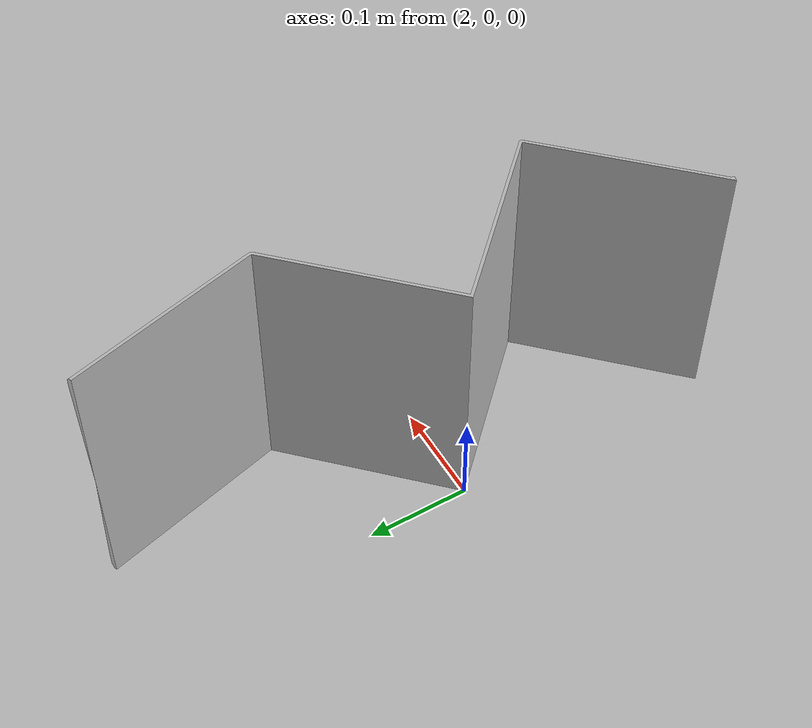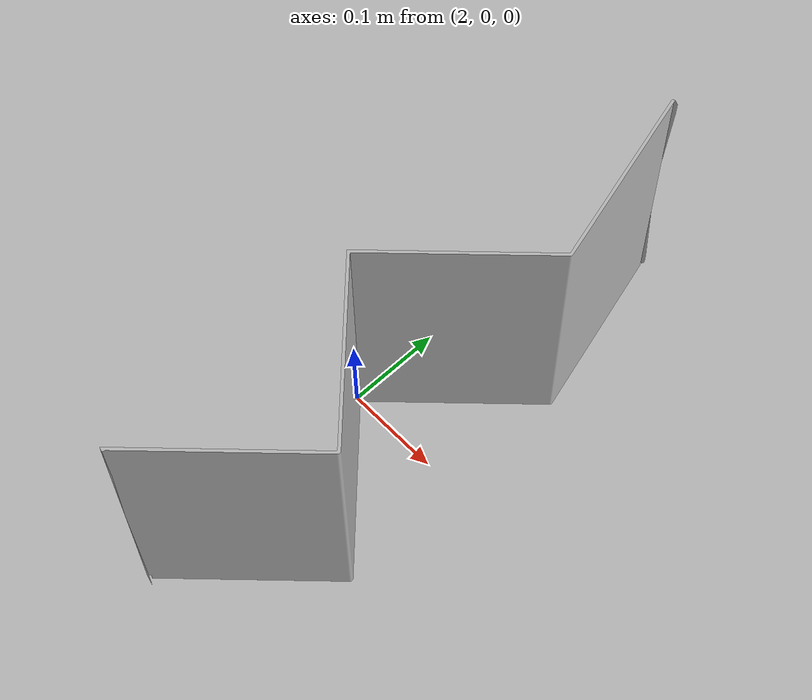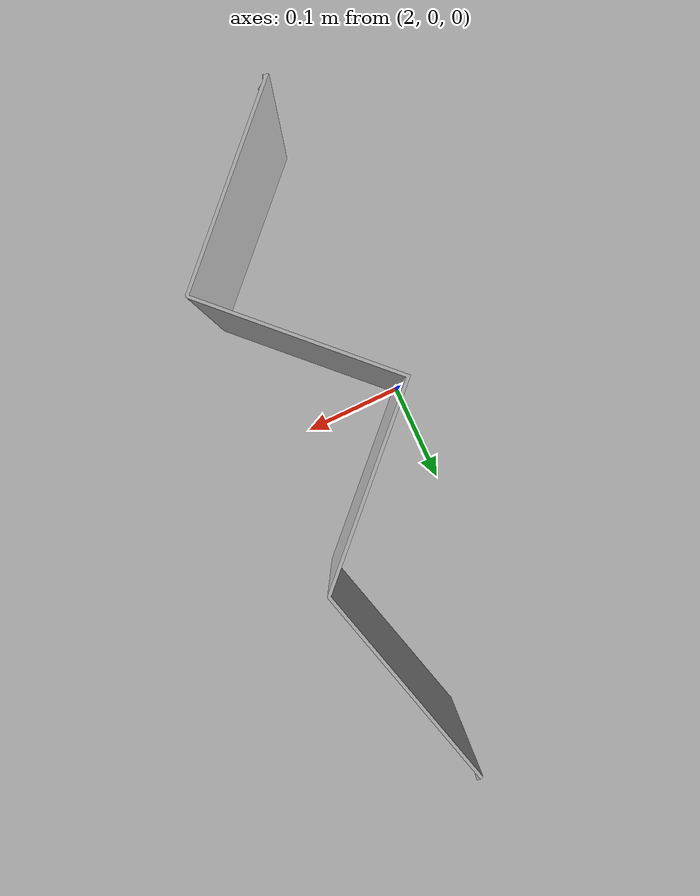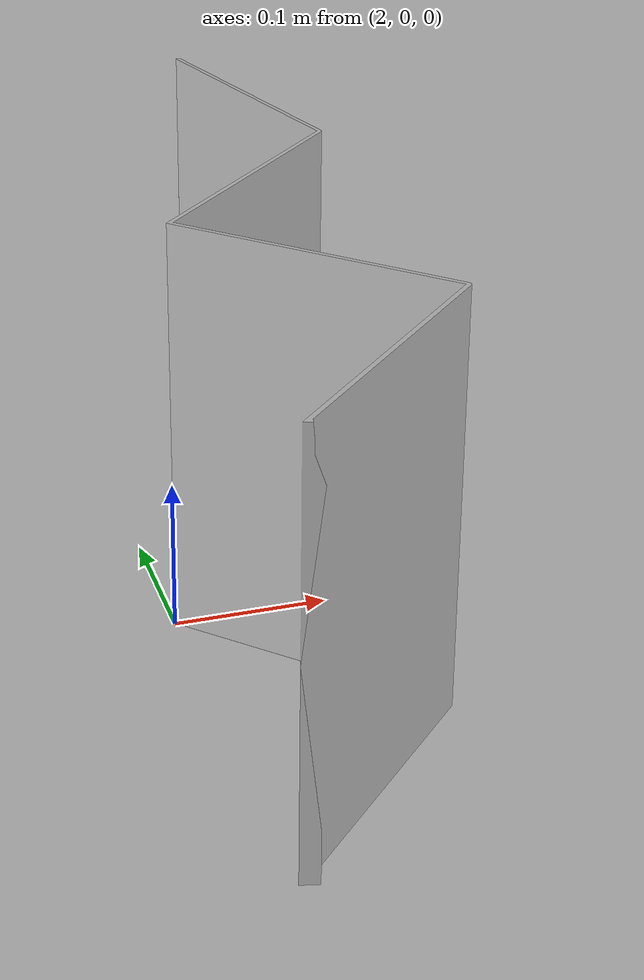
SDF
<?xml version="1.0"?>
<sdf version="1.4">
  <world name="default">
    <scene>
      <ambient>0.500000 0.500000 0.500000 1.000000</ambient>
      <background>0.500000 0.500000 0.500000 1.000000</background>
      <shadows>0</shadows>
    </scene>
    <physics type="ode">
      <gravity>0.000000 0.000000 -9.800000</gravity>
      <ode>
        <solver>
          <type>quick</type>
          <iters>200</iters>
          <sor>1.300000</sor>
        </solver>
        <constraints>
          <cfm>0.000000</cfm>
          <erp>0.200000</erp>
          <contact_max_correcting_vel>100.000000</contact_max_correcting_vel>
          <contact_surface_layer>0.001000</contact_surface_layer>
        </constraints>
      </ode>
      <real_time_update_rate>1000.000000</real_time_update_rate>
      <max_step_size>0.002000</max_step_size>
    </physics>
    <model name="docking_base">
      <link name="docking_pattern">
        <pose>2.0 0 0 0 0 0</pose>
        <collision name="docking_pattern_collision">
          <geometry>
            <mesh>
              <uri>model://media/models/docking_pattern/meshes/models/docking_pattern.stl</uri>
              <scale>1 1 1</scale>
            </mesh>
          </geometry>
        </collision>
        <visual name="docking_pattern_visual">
          <geometry>
            <mesh>
              <uri>model://media/models/docking_pattern/meshes/models/docking_pattern.stl</uri>
              <scale>1 1 1</scale>
            </mesh>
          </geometry>
          <cast_shadows>false</cast_shadows>
        </visual>
      </link>
      <static>true</static>
    </model>
    <model name="7thmap">
      <pose>9 -10 0  0 0 0</pose>
      <static>true</static>
      <link name="body">
        <collision name="collision">
          <geometry>
            <mesh><uri>model://media/models/7thmap_new/7thmap.dae</uri></mesh>
          </geometry>
          <surface>
            <friction>
              <ode>
                <mu>100000000.000000</mu>
                <mu2>100000000.000000</mu2>
                <fdir1>0.000000 0.000000 0.000000</fdir1>
                <slip1>0.000000</slip1>
                <slip2>0.000000</slip2>
              </ode>
            </friction>
            <bounce>
              <restitution_coefficient>0.000000</restitution_coefficient>
              <threshold>1000000.000000</threshold>
            </bounce>
            <contact>
              <ode>
                <soft_cfm>0.000000</soft_cfm>
                <soft_erp>0.200000</soft_erp>
                <kp>10000000000.000000</kp>
                <kd>1.000000</kd>
                <max_vel>100.000000</max_vel>
                <min_depth>0.000100</min_depth>
              </ode>
            </contact>
          </surface>
        </collision>
        <visual name="visual">
          <geometry>
            <mesh><uri>model://media/models/7thmap_new/7thmap.dae</uri></mesh>
          </geometry>
          <material>
            <script>
              <name>__default__</name>
            </script>
          </material>
          <cast_shadows>0</cast_shadows>
        </visual>
        <velocity_decay>
          <linear>0.000000</linear>
          <angular>0.000000</angular>
        </velocity_decay>
        <self_collide>0</self_collide>
        <kinematic>0</kinematic>
      </link>
      <static>1</static>
    </model>
    <light name="my_light_01" type="directional">
      <pose>0.000000 0.000000 30.000000 0.000000 -0.000000 0.000000</pose>
      <diffuse>0.900000 0.900000 0.900000 1.000000</diffuse>
      <specular>0.600000 0.600000 0.600000 1.000000</specular>
      <attenuation>
        <range>20.000000</range>
      </attenuation>
      <direction>0.000000 0.000000 -1.000000</direction>
      <cast_shadows>0</cast_shadows>
    </light>
    <light name="my_light_02" type="directional">
      <pose>0.000000 0.000000 30.000000 0.000000 -0.000000 0.000000</pose>
      <diffuse>0.900000 0.900000 0.900000 1.000000</diffuse>
      <specular>0.600000 0.600000 0.600000 1.000000</specular>
      <attenuation>
        <range>20.000000</range>
      </attenuation>
      <direction>-1.000000 0.000000 0.000000</direction>
      <cast_shadows>0</cast_shadows>
    </light>
    <light name="my_light_03" type="directional">
      <pose>0.000000 0.000000 30.000000 0.000000 -0.000000 0.000000</pose>
      <diffuse>0.900000 0.900000 0.900000 1.000000</diffuse>
      <specular>0.600000 0.600000 0.600000 1.000000</specular>
      <attenuation>
        <range>20.000000</range>
      </attenuation>
      <direction>0.000000 -1.000000 0.000000</direction>
      <cast_shadows>0</cast_shadows>
    </light>
    <light name="my_light_04" type="directional">
      <pose>0.000000 0.000000 30.000000 0.000000 -0.000000 0.000000</pose>
      <diffuse>0.900000 0.900000 0.900000 1.000000</diffuse>
      <specular>0.600000 0.600000 0.600000 1.000000</specular>
      <attenuation>
        <range>20.000000</range>
      </attenuation>
      <direction>0.000000 0.000000 1.000000</direction>
      <cast_shadows>0</cast_shadows>
    </light>
    <light name="my_light_05" type="directional">
      <pose>0.000000 0.000000 30.000000 0.000000 -0.000000 0.000000</pose>
      <diffuse>0.900000 0.900000 0.900000 1.000000</diffuse>
      <specular>0.600000 0.600000 0.600000 1.000000</specular>
      <attenuation>
        <range>20.000000</range>
      </attenuation>
      <direction>1.000000 0.000000 0.000000</direction>
      <cast_shadows>0</cast_shadows>
    </light>
    <light name="my_light_06" type="directional">
      <pose>0.000000 0.000000 30.000000 0.000000 -0.000000 0.000000</pose>
      <diffuse>0.900000 0.900000 0.900000 1.000000</diffuse>
      <specular>0.600000 0.600000 0.600000 1.000000</specular>
      <attenuation>
        <range>20.000000</range>
      </attenuation>
      <direction>0.000000 1.000000 0.000000</direction>
      <cast_shadows>0</cast_shadows>
    </light>
  </world>
</sdf>
